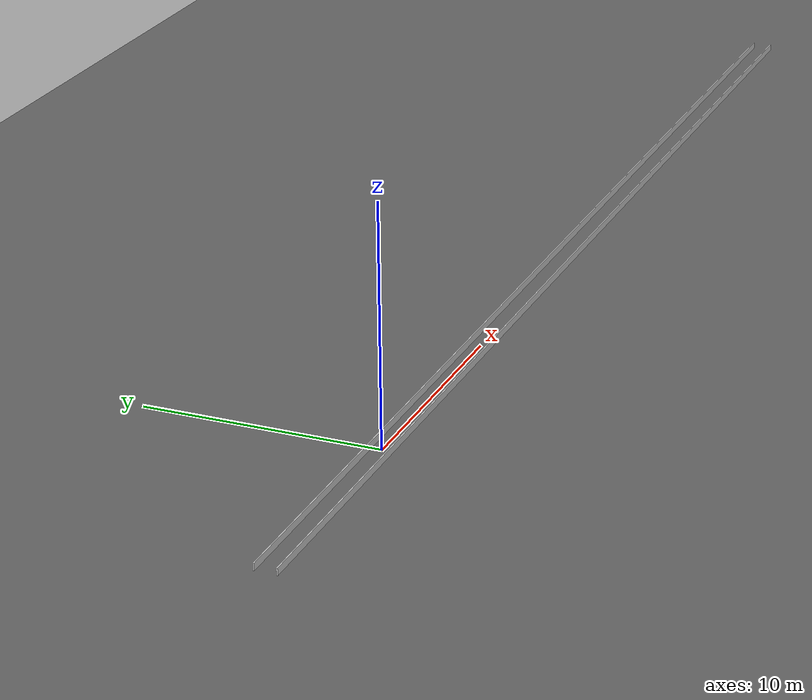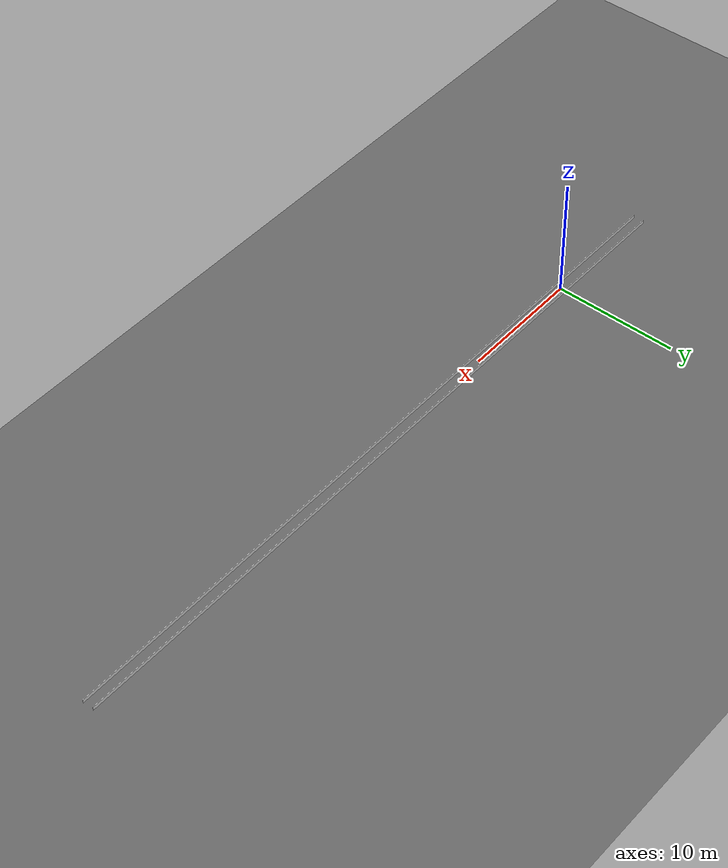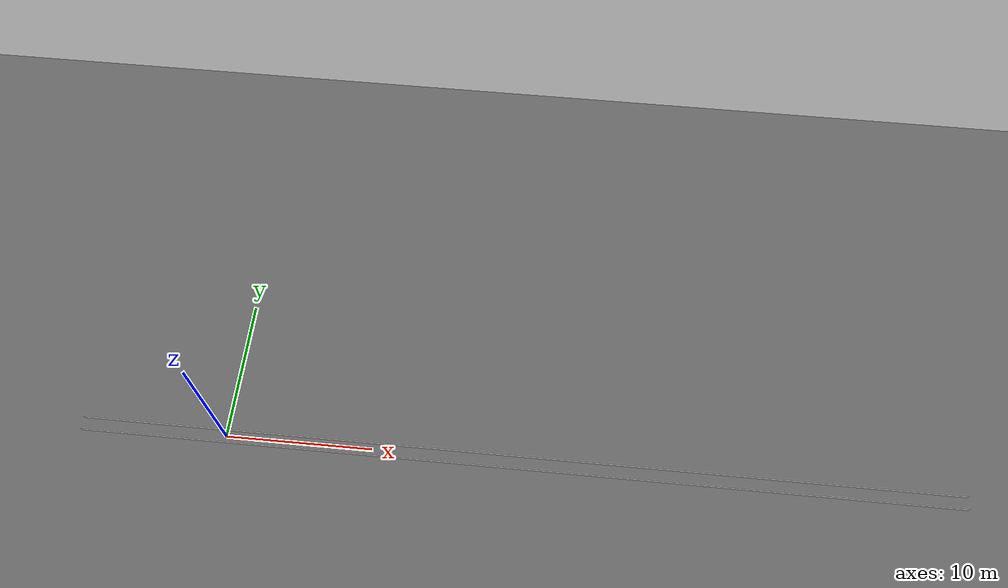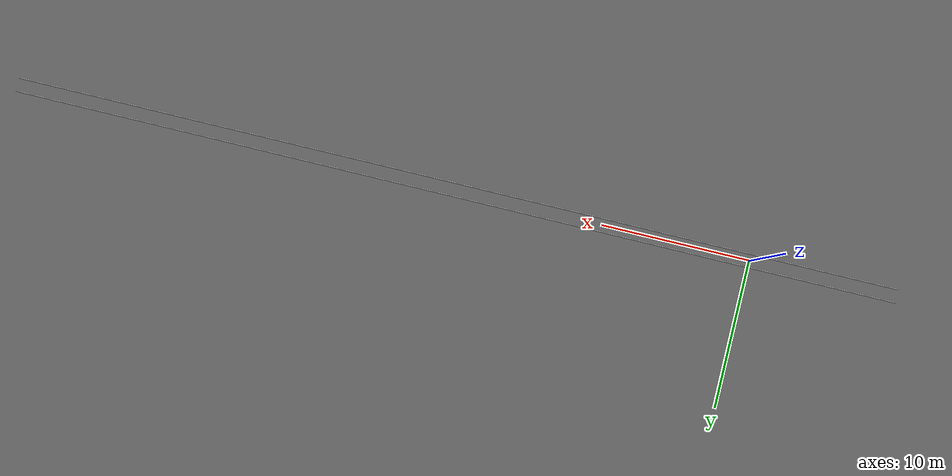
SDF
<?xml version='1.0' encoding='utf-8'?>
<sdf version="1.10">

  <world name="it_arena_track">
    <gravity>0 0 -9.81</gravity>
    <physics name="dynamics_1ms" type="ignored">
      <max_step_size>0.001</max_step_size>
      <real_time_factor>1.0</real_time_factor>
    </physics>
    <plugin filename="gz-sim-physics-system" name="gz::sim::systems::Physics" />
    <plugin filename="gz-sim-user-commands-system" name="gz::sim::systems::UserCommands" />
    <plugin filename="gz-sim-scene-broadcaster-system" name="gz::sim::systems::SceneBroadcaster" />
    <plugin filename="gz-sim-sensors-system" name="gz::sim::systems::Sensors"><render_engine>ogre2</render_engine></plugin>
    <plugin filename="gz-sim-imu-system" name="gz::sim::systems::Imu" />
    <light type="directional" name="sun">
      <pose>0 0 10 0 0 0</pose><diffuse>0.8 0.8 0.8 1</diffuse><specular>0.1 0.1 0.1 1</specular>
      <direction>-0.3 0.2 -1</direction><cast_shadows>true</cast_shadows>
    </light>
    <model name="lab_ground">
      <static>true</static>
      <link name="ground">
        <collision name="collision">
          <geometry><plane><normal>0 0 1</normal><size>120 120</size></plane></geometry>
          <surface><friction><ode><mu>1.6</mu><mu2>1.6</mu2></ode></friction></surface>
        </collision>
        <visual name="visual">
          <geometry><plane><normal>0 0 1</normal><size>120 120</size></plane></geometry>
          <material><ambient>0.3 0.3 0.3 1</ambient><diffuse>0.4 0.4 0.4 1</diffuse></material>
        </visual>
      </link>
    </model>
  <model name="lidar_lab_walls"><static>true</static><link name="walls"><collision name="left_collision"><pose>20.0 0.45 .15 0 0 0.0</pose><geometry><box><size>60.0 0.05 .30</size></box></geometry></collision><visual name="left_visual"><pose>20.0 0.45 .15 0 0 0.0</pose><geometry><box><size>60.0 0.05 .30</size></box></geometry><material><ambient>0.8 0.8 0.8 1</ambient><diffuse>0.8 0.8 0.8 1</diffuse></material></visual><collision name="right_collision"><pose>20.0 -0.45 .15 0 0 0.0</pose><geometry><box><size>60.0 0.05 .30</size></box></geometry></collision><visual name="right_visual"><pose>20.0 -0.45 .15 0 0 0.0</pose><geometry><box><size>60.0 0.05 .30</size></box></geometry><material><ambient>0.8 0.8 0.8 1</ambient><diffuse>0.8 0.8 0.8 1</diffuse></material></visual></link></model></world>
</sdf>
